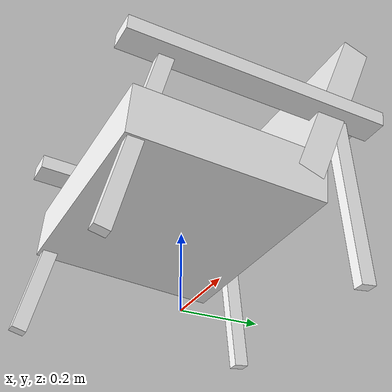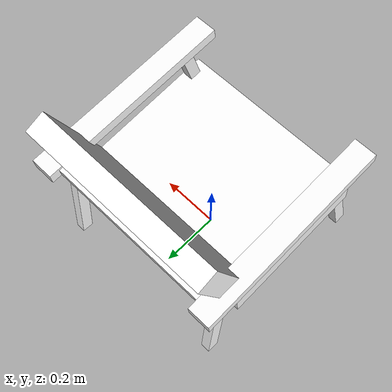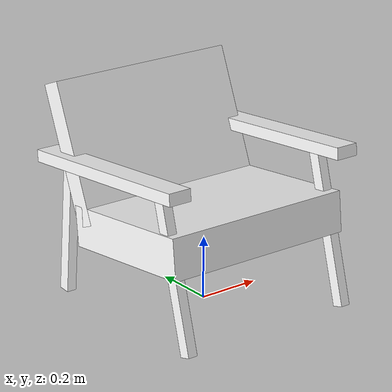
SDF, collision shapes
<?xml version='1.0'?>
<sdf version='1.7'>
  <model name='Armchair'>
    <link name='base_link'>
      <self_collide>0</self_collide>
      <enable_wind>0</enable_wind>
      <kinematic>0</kinematic>
      <pose>0 0 0 0 -0 0</pose>
      <visual name='visual'>
        <geometry>
          <mesh>
            <uri>/home/tadeo/.ignition/fuel/fuel.ignitionrobotics.org/openrobotics/models/armchair/2/meshes/armchair.dae</uri>
          </mesh>
        </geometry>
        <material>
          <diffuse>1 1 1 1</diffuse>
          <specular>1 1 1 1</specular>
          <pbr>
            <metal>
              <albedo_map>materials/textures/Armchair_Albedo.png</albedo_map>
              <normal_map>materials/textures/Armchair_Normal.png</normal_map>
              <roughness_map>materials/textures/Armchair_Roughness.png</roughness_map>
            </metal>
          </pbr>
          <shader type='pixel'/>
          <script>
            <name>ModelPreview_1::base_link::visual_MATERIAL_</name>
            <uri>__default__</uri>
          </script>
        </material>
        <pose>0 0 0 0 -0 0</pose>
        <transparency>0</transparency>
        <cast_shadows>1</cast_shadows>
      </visual>
      <collision name='Box001'>
        <laser_retro>0</laser_retro>
        <max_contacts>10</max_contacts>
        <pose>0 0.261949 0.460133 -0.384212 0 0</pose>
        <geometry>
          <box>
            <size>0.631431 0.069924 0.445858</size>
          </box>
        </geometry>
        <surface>
          <friction>
            <ode>
              <mu>1</mu>
              <mu2>1</mu2>
              <fdir1>0 0 0</fdir1>
              <slip1>0</slip1>
              <slip2>0</slip2>
            </ode>
            <torsional>
              <coefficient>1</coefficient>
              <patch_radius>0</patch_radius>
              <surface_radius>0</surface_radius>
              <use_patch_radius>1</use_patch_radius>
              <ode>
                <slip>0</slip>
              </ode>
            </torsional>
          </friction>
          <bounce>
            <restitution_coefficient>0</restitution_coefficient>
            <threshold>1e+06</threshold>
          </bounce>
          <contact>
            <collide_without_contact>0</collide_without_contact>
            <collide_without_contact_bitmask>1</collide_without_contact_bitmask>
            <collide_bitmask>1</collide_bitmask>
            <ode>
              <soft_cfm>0</soft_cfm>
              <soft_erp>0.2</soft_erp>
              <kp>1e+13</kp>
              <kd>1</kd>
              <max_vel>0.01</max_vel>
              <min_depth>0</min_depth>
            </ode>
            <bullet>
              <split_impulse>1</split_impulse>
              <split_impulse_penetration_threshold>-0.01</split_impulse_penetration_threshold>
              <soft_cfm>0</soft_cfm>
              <soft_erp>0.2</soft_erp>
              <kp>1e+13</kp>
              <kd>1</kd>
            </bullet>
          </contact>
        </surface>
      </collision>
      <collision name='Box003'>
        <laser_retro>0</laser_retro>
        <max_contacts>10</max_contacts>
        <pose>0 -0.023623 0.268079 1.47249 -0 0</pose>
        <geometry>
          <box>
            <size>0.631431 0.130198 0.491702</size>
          </box>
        </geometry>
        <surface>
          <friction>
            <ode>
              <mu>1</mu>
              <mu2>1</mu2>
              <fdir1>0 0 0</fdir1>
              <slip1>0</slip1>
              <slip2>0</slip2>
            </ode>
            <torsional>
              <coefficient>1</coefficient>
              <patch_radius>0</patch_radius>
              <surface_radius>0</surface_radius>
              <use_patch_radius>1</use_patch_radius>
              <ode>
                <slip>0</slip>
              </ode>
            </torsional>
          </friction>
          <bounce>
            <restitution_coefficient>0</restitution_coefficient>
            <threshold>1e+06</threshold>
          </bounce>
          <contact>
            <collide_without_contact>0</collide_without_contact>
            <collide_without_contact_bitmask>1</collide_without_contact_bitmask>
            <collide_bitmask>1</collide_bitmask>
            <ode>
              <soft_cfm>0</soft_cfm>
              <soft_erp>0.2</soft_erp>
              <kp>1e+13</kp>
              <kd>1</kd>
              <max_vel>0.01</max_vel>
              <min_depth>0</min_depth>
            </ode>
            <bullet>
              <split_impulse>1</split_impulse>
              <split_impulse_penetration_threshold>-0.01</split_impulse_penetration_threshold>
              <soft_cfm>0</soft_cfm>
              <soft_erp>0.2</soft_erp>
              <kp>1e+13</kp>
              <kd>1</kd>
            </bullet>
          </contact>
        </surface>
      </collision>
      <collision name='Box004'>
        <laser_retro>0</laser_retro>
        <max_contacts>10</max_contacts>
        <pose>-0.29402 0.291571 0.221926 -3.0538 0 0</pose>
        <geometry>
          <box>
            <size>0.031572 0.038458 0.445858</size>
          </box>
        </geometry>
        <surface>
          <friction>
            <ode>
              <mu>1</mu>
              <mu2>1</mu2>
              <fdir1>0 0 0</fdir1>
              <slip1>0</slip1>
              <slip2>0</slip2>
            </ode>
            <torsional>
              <coefficient>1</coefficient>
              <patch_radius>0</patch_radius>
              <surface_radius>0</surface_radius>
              <use_patch_radius>1</use_patch_radius>
              <ode>
                <slip>0</slip>
              </ode>
            </torsional>
          </friction>
          <bounce>
            <restitution_coefficient>0</restitution_coefficient>
            <threshold>1e+06</threshold>
          </bounce>
          <contact>
            <collide_without_contact>0</collide_without_contact>
            <collide_without_contact_bitmask>1</collide_without_contact_bitmask>
            <collide_bitmask>1</collide_bitmask>
            <ode>
              <soft_cfm>0</soft_cfm>
              <soft_erp>0.2</soft_erp>
              <kp>1e+13</kp>
              <kd>1</kd>
              <max_vel>0.01</max_vel>
              <min_depth>0</min_depth>
            </ode>
            <bullet>
              <split_impulse>1</split_impulse>
              <split_impulse_penetration_threshold>-0.01</split_impulse_penetration_threshold>
              <soft_cfm>0</soft_cfm>
              <soft_erp>0.2</soft_erp>
              <kp>1e+13</kp>
              <kd>1</kd>
            </bullet>
          </contact>
        </surface>
      </collision>
      <collision name='Box005'>
        <laser_retro>0</laser_retro>
        <max_contacts>10</max_contacts>
        <pose>-0.29402 -0.242078 0.24347 2.87267 -0 0</pose>
        <geometry>
          <box>
            <size>0.031572 0.038458 0.50382</size>
          </box>
        </geometry>
        <surface>
          <friction>
            <ode>
              <mu>1</mu>
              <mu2>1</mu2>
              <fdir1>0 0 0</fdir1>
              <slip1>0</slip1>
              <slip2>0</slip2>
            </ode>
            <torsional>
              <coefficient>1</coefficient>
              <patch_radius>0</patch_radius>
              <surface_radius>0</surface_radius>
              <use_patch_radius>1</use_patch_radius>
              <ode>
                <slip>0</slip>
              </ode>
            </torsional>
          </friction>
          <bounce>
            <restitution_coefficient>0</restitution_coefficient>
            <threshold>1e+06</threshold>
          </bounce>
          <contact>
            <collide_without_contact>0</collide_without_contact>
            <collide_without_contact_bitmask>1</collide_without_contact_bitmask>
            <collide_bitmask>1</collide_bitmask>
            <ode>
              <soft_cfm>0</soft_cfm>
              <soft_erp>0.2</soft_erp>
              <kp>1e+13</kp>
              <kd>1</kd>
              <max_vel>0.01</max_vel>
              <min_depth>0</min_depth>
            </ode>
            <bullet>
              <split_impulse>1</split_impulse>
              <split_impulse_penetration_threshold>-0.01</split_impulse_penetration_threshold>
              <soft_cfm>0</soft_cfm>
              <soft_erp>0.2</soft_erp>
              <kp>1e+13</kp>
              <kd>1</kd>
            </bullet>
          </contact>
        </surface>
      </collision>
      <collision name='Box006'>
        <laser_retro>0</laser_retro>
        <max_contacts>10</max_contacts>
        <pose>-0.312721 0.040686 0.462906 1.48645 -0 0</pose>
        <geometry>
          <box>
            <size>0.075456 0.038458 0.67008</size>
          </box>
        </geometry>
        <surface>
          <friction>
            <ode>
              <mu>1</mu>
              <mu2>1</mu2>
              <fdir1>0 0 0</fdir1>
              <slip1>0</slip1>
              <slip2>0</slip2>
            </ode>
            <torsional>
              <coefficient>1</coefficient>
              <patch_radius>0</patch_radius>
              <surface_radius>0</surface_radius>
              <use_patch_radius>1</use_patch_radius>
              <ode>
                <slip>0</slip>
              </ode>
            </torsional>
          </friction>
          <bounce>
            <restitution_coefficient>0</restitution_coefficient>
            <threshold>1e+06</threshold>
          </bounce>
          <contact>
            <collide_without_contact>0</collide_without_contact>
            <collide_without_contact_bitmask>1</collide_without_contact_bitmask>
            <collide_bitmask>1</collide_bitmask>
            <ode>
              <soft_cfm>0</soft_cfm>
              <soft_erp>0.2</soft_erp>
              <kp>1e+13</kp>
              <kd>1</kd>
              <max_vel>0.01</max_vel>
              <min_depth>0</min_depth>
            </ode>
            <bullet>
              <split_impulse>1</split_impulse>
              <split_impulse_penetration_threshold>-0.01</split_impulse_penetration_threshold>
              <soft_cfm>0</soft_cfm>
              <soft_erp>0.2</soft_erp>
              <kp>1e+13</kp>
              <kd>1</kd>
            </bullet>
          </contact>
        </surface>
      </collision>
      <collision name='Box007'>
        <laser_retro>0</laser_retro>
        <max_contacts>10</max_contacts>
        <pose>0.29402 0.291571 0.221926 -3.0538 0 0</pose>
        <geometry>
          <box>
            <size>0.031572 0.038458 0.445858</size>
          </box>
        </geometry>
        <surface>
          <friction>
            <ode>
              <mu>1</mu>
              <mu2>1</mu2>
              <fdir1>0 0 0</fdir1>
              <slip1>0</slip1>
              <slip2>0</slip2>
            </ode>
            <torsional>
              <coefficient>1</coefficient>
              <patch_radius>0</patch_radius>
              <surface_radius>0</surface_radius>
              <use_patch_radius>1</use_patch_radius>
              <ode>
                <slip>0</slip>
              </ode>
            </torsional>
          </friction>
          <bounce>
            <restitution_coefficient>0</restitution_coefficient>
            <threshold>1e+06</threshold>
          </bounce>
          <contact>
            <collide_without_contact>0</collide_without_contact>
            <collide_without_contact_bitmask>1</collide_without_contact_bitmask>
            <collide_bitmask>1</collide_bitmask>
            <ode>
              <soft_cfm>0</soft_cfm>
              <soft_erp>0.2</soft_erp>
              <kp>1e+13</kp>
              <kd>1</kd>
              <max_vel>0.01</max_vel>
              <min_depth>0</min_depth>
            </ode>
            <bullet>
              <split_impulse>1</split_impulse>
              <split_impulse_penetration_threshold>-0.01</split_impulse_penetration_threshold>
              <soft_cfm>0</soft_cfm>
              <soft_erp>0.2</soft_erp>
              <kp>1e+13</kp>
              <kd>1</kd>
            </bullet>
          </contact>
        </surface>
      </collision>
      <collision name='Box008'>
        <laser_retro>0</laser_retro>
        <max_contacts>10</max_contacts>
        <pose>0.29402 -0.242078 0.24347 2.87267 -0 0</pose>
        <geometry>
          <box>
            <size>0.031572 0.038458 0.50382</size>
          </box>
        </geometry>
        <surface>
          <friction>
            <ode>
              <mu>1</mu>
              <mu2>1</mu2>
              <fdir1>0 0 0</fdir1>
              <slip1>0</slip1>
              <slip2>0</slip2>
            </ode>
            <torsional>
              <coefficient>1</coefficient>
              <patch_radius>0</patch_radius>
              <surface_radius>0</surface_radius>
              <use_patch_radius>1</use_patch_radius>
              <ode>
                <slip>0</slip>
              </ode>
            </torsional>
          </friction>
          <bounce>
            <restitution_coefficient>0</restitution_coefficient>
            <threshold>1e+06</threshold>
          </bounce>
          <contact>
            <collide_without_contact>0</collide_without_contact>
            <collide_without_contact_bitmask>1</collide_without_contact_bitmask>
            <collide_bitmask>1</collide_bitmask>
            <ode>
              <soft_cfm>0</soft_cfm>
              <soft_erp>0.2</soft_erp>
              <kp>1e+13</kp>
              <kd>1</kd>
              <max_vel>0.01</max_vel>
              <min_depth>0</min_depth>
            </ode>
            <bullet>
              <split_impulse>1</split_impulse>
              <split_impulse_penetration_threshold>-0.01</split_impulse_penetration_threshold>
              <soft_cfm>0</soft_cfm>
              <soft_erp>0.2</soft_erp>
              <kp>1e+13</kp>
              <kd>1</kd>
            </bullet>
          </contact>
        </surface>
      </collision>
      <collision name='Box009'>
        <laser_retro>0</laser_retro>
        <max_contacts>10</max_contacts>
        <pose>0.31272 0.040686 0.462906 1.48645 -0 0</pose>
        <geometry>
          <box>
            <size>0.075456 0.038458 0.67008</size>
          </box>
        </geometry>
        <surface>
          <friction>
            <ode>
              <mu>1</mu>
              <mu2>1</mu2>
              <fdir1>0 0 0</fdir1>
              <slip1>0</slip1>
              <slip2>0</slip2>
            </ode>
            <torsional>
              <coefficient>1</coefficient>
              <patch_radius>0</patch_radius>
              <surface_radius>0</surface_radius>
              <use_patch_radius>1</use_patch_radius>
              <ode>
                <slip>0</slip>
              </ode>
            </torsional>
          </friction>
          <bounce>
            <restitution_coefficient>0</restitution_coefficient>
            <threshold>1e+06</threshold>
          </bounce>
          <contact>
            <collide_without_contact>0</collide_without_contact>
            <collide_without_contact_bitmask>1</collide_without_contact_bitmask>
            <collide_bitmask>1</collide_bitmask>
            <ode>
              <soft_cfm>0</soft_cfm>
              <soft_erp>0.2</soft_erp>
              <kp>1e+13</kp>
              <kd>1</kd>
              <max_vel>0.01</max_vel>
              <min_depth>0</min_depth>
            </ode>
            <bullet>
              <split_impulse>1</split_impulse>
              <split_impulse_penetration_threshold>-0.01</split_impulse_penetration_threshold>
              <soft_cfm>0</soft_cfm>
              <soft_erp>0.2</soft_erp>
              <kp>1e+13</kp>
              <kd>1</kd>
            </bullet>
          </contact>
        </surface>
      </collision>
      <collision name='Box010'>
        <laser_retro>0</laser_retro>
        <max_contacts>10</max_contacts>
        <pose>-0.000555 0.305595 0.439838 -0.083363 0 0</pose>
        <geometry>
          <box>
            <size>0.591172 0.072043 0.023308</size>
          </box>
        </geometry>
        <surface>
          <friction>
            <ode>
              <mu>1</mu>
              <mu2>1</mu2>
              <fdir1>0 0 0</fdir1>
              <slip1>0</slip1>
              <slip2>0</slip2>
            </ode>
            <torsional>
              <coefficient>1</coefficient>
              <patch_radius>0</patch_radius>
              <surface_radius>0</surface_radius>
              <use_patch_radius>1</use_patch_radius>
              <ode>
                <slip>0</slip>
              </ode>
            </torsional>
          </friction>
          <bounce>
            <restitution_coefficient>0</restitution_coefficient>
            <threshold>1e+06</threshold>
          </bounce>
          <contact>
            <collide_without_contact>0</collide_without_contact>
            <collide_without_contact_bitmask>1</collide_without_contact_bitmask>
            <collide_bitmask>1</collide_bitmask>
            <ode>
              <soft_cfm>0</soft_cfm>
              <soft_erp>0.2</soft_erp>
              <kp>1e+13</kp>
              <kd>1</kd>
              <max_vel>0.01</max_vel>
              <min_depth>0</min_depth>
            </ode>
            <bullet>
              <split_impulse>1</split_impulse>
              <split_impulse_penetration_threshold>-0.01</split_impulse_penetration_threshold>
              <soft_cfm>0</soft_cfm>
              <soft_erp>0.2</soft_erp>
              <kp>1e+13</kp>
              <kd>1</kd>
            </bullet>
          </contact>
        </surface>
      </collision>
    </link>
    <static>1</static>
    <allow_auto_disable>1</allow_auto_disable>
  </model>
</sdf>
